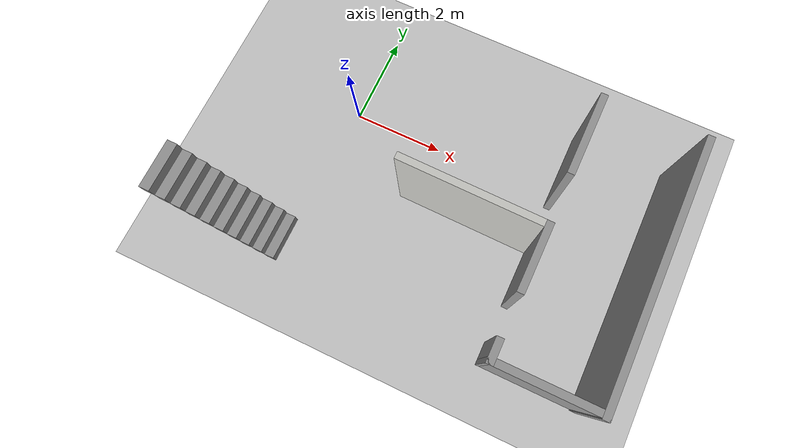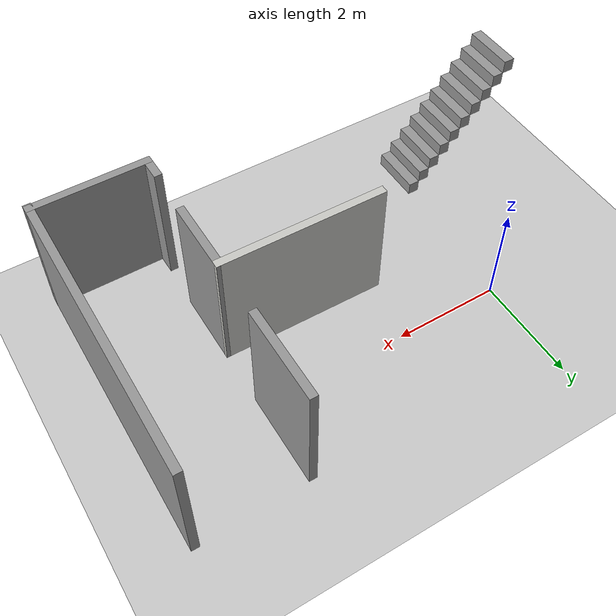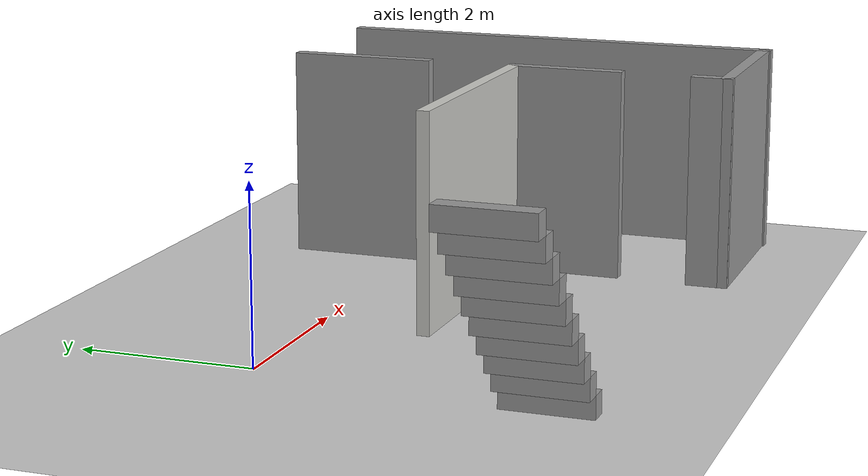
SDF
<sdf version="1.6">
 <world name="default">
  <model name="ground_plane">
   <static>1</static>
   <link name="link">
    <collision name="collision">
     <geometry><plane><normal>0 0 1</normal><size>100 100</size></plane></geometry>
     <surface><friction><ode><mu>100</mu><mu2>50</mu2></ode></friction></surface>
    </collision>
    <visual name="visual">
     <cast_shadows>0</cast_shadows>
     <geometry><plane><normal>0 0 1</normal><size>100 100</size></plane></geometry>
     <material>
      <script><uri>file://media/materials/scripts/gazebo.material</uri><name>Gazebo/Grey</name></script>
     </material>
    </visual>
   </link>
  </model>
  <model name="SLAMHome">
   <link name="Stairs_1">
    <visual name="Stairs_1_Visual_0">
     <pose>-2.48305 -2.07455 0.125 0 0 -1.5708</pose>
     <geometry><box><size>1 0.215239 0.25</size></box></geometry>
     <material>
      <script><uri>file://media/materials/scripts/gazebo.material</uri><name>Gazebo/Grey</name></script>
      <ambient>1 1 1 1</ambient>
      <diffuse>0.7 0.7 0.7 1</diffuse>
      <specular>0.01 0.01 0.01 1</specular>
      <emissive>0 0 0 1</emissive>
     </material>
    </visual>
    <visual name="Stairs_1_Visual_1">
     <pose>-2.69829 -2.07455 0.375 0 0 -1.5708</pose>
     <geometry><box><size>1 0.215239 0.25</size></box></geometry>
     <material>
      <script><uri>file://media/materials/scripts/gazebo.material</uri><name>Gazebo/Grey</name></script>
      <ambient>1 1 1 1</ambient>
      <diffuse>0.7 0.7 0.7 1</diffuse>
      <specular>0.01 0.01 0.01 1</specular>
      <emissive>0 0 0 1</emissive>
     </material>
    </visual>
    <visual name="Stairs_1_Visual_2">
     <pose>-2.91353 -2.07455 0.625 0 0 -1.5708</pose>
     <geometry><box><size>1 0.215239 0.25</size></box></geometry>
     <material>
      <script><uri>file://media/materials/scripts/gazebo.material</uri><name>Gazebo/Grey</name></script>
      <ambient>1 1 1 1</ambient>
      <diffuse>0.7 0.7 0.7 1</diffuse>
      <specular>0.01 0.01 0.01 1</specular>
      <emissive>0 0 0 1</emissive>
     </material>
    </visual>
    <visual name="Stairs_1_Visual_3">
     <pose>-3.12877 -2.07455 0.875 0 0 -1.5708</pose>
     <geometry><box><size>1 0.215239 0.25</size></box></geometry>
     <material>
      <script><uri>file://media/materials/scripts/gazebo.material</uri><name>Gazebo/Grey</name></script>
      <ambient>1 1 1 1</ambient>
      <diffuse>0.7 0.7 0.7 1</diffuse>
      <specular>0.01 0.01 0.01 1</specular>
      <emissive>0 0 0 1</emissive>
     </material>
    </visual>
    <visual name="Stairs_1_Visual_4">
     <pose>-3.34401 -2.07455 1.125 0 0 -1.5708</pose>
     <geometry><box><size>1 0.215239 0.25</size></box></geometry>
     <material>
      <script><uri>file://media/materials/scripts/gazebo.material</uri><name>Gazebo/Grey</name></script>
      <ambient>1 1 1 1</ambient>
      <diffuse>0.7 0.7 0.7 1</diffuse>
      <specular>0.01 0.01 0.01 1</specular>
      <emissive>0 0 0 1</emissive>
     </material>
    </visual>
    <visual name="Stairs_1_Visual_5">
     <pose>-3.55925 -2.07455 1.375 0 0 -1.5708</pose>
     <geometry><box><size>1 0.215239 0.25</size></box></geometry>
     <material>
      <script><uri>file://media/materials/scripts/gazebo.material</uri><name>Gazebo/Grey</name></script>
      <ambient>1 1 1 1</ambient>
      <diffuse>0.7 0.7 0.7 1</diffuse>
      <specular>0.01 0.01 0.01 1</specular>
      <emissive>0 0 0 1</emissive>
     </material>
    </visual>
    <visual name="Stairs_1_Visual_6">
     <pose>-3.77449 -2.07455 1.625 0 0 -1.5708</pose>
     <geometry><box><size>1 0.215239 0.25</size></box></geometry>
     <material>
      <script><uri>file://media/materials/scripts/gazebo.material</uri><name>Gazebo/Grey</name></script>
      <ambient>1 1 1 1</ambient>
      <diffuse>0.7 0.7 0.7 1</diffuse>
      <specular>0.01 0.01 0.01 1</specular>
      <emissive>0 0 0 1</emissive>
     </material>
    </visual>
    <visual name="Stairs_1_Visual_7">
     <pose>-3.98973 -2.07455 1.875 0 0 -1.5708</pose>
     <geometry><box><size>1 0.215239 0.25</size></box></geometry>
     <material>
      <script><uri>file://media/materials/scripts/gazebo.material</uri><name>Gazebo/Grey</name></script>
      <ambient>1 1 1 1</ambient>
      <diffuse>0.7 0.7 0.7 1</diffuse>
      <specular>0.01 0.01 0.01 1</specular>
      <emissive>0 0 0 1</emissive>
     </material>
    </visual>
    <visual name="Stairs_1_Visual_8">
     <pose>-4.20497 -2.07455 2.125 0 0 -1.5708</pose>
     <geometry><box><size>1 0.215239 0.25</size></box></geometry>
     <material>
      <script><uri>file://media/materials/scripts/gazebo.material</uri><name>Gazebo/Grey</name></script>
      <ambient>1 1 1 1</ambient>
      <diffuse>0.7 0.7 0.7 1</diffuse>
      <specular>0.01 0.01 0.01 1</specular>
      <emissive>0 0 0 1</emissive>
     </material>
    </visual>
    <visual name="Stairs_1_Visual_9">
     <pose>-4.42021 -2.07455 2.375 0 0 -1.5708</pose>
     <geometry><box><size>1 0.215239 0.25</size></box></geometry>
     <material>
      <script><uri>file://media/materials/scripts/gazebo.material</uri><name>Gazebo/Grey</name></script>
      <ambient>1 1 1 1</ambient>
      <diffuse>0.7 0.7 0.7 1</diffuse>
      <specular>0.01 0.01 0.01 1</specular>
      <emissive>0 0 0 1</emissive>
     </material>
    </visual>
    <collision name="Stairs_1_Collision_1">
     <pose>-2.69829 -2.07455 0.375 0 0 -1.5708</pose>
     <geometry><box><size>1 0.215239 0.25</size></box></geometry>
     <surface>
      <friction>
       <ode><mu>1</mu><mu2>1</mu2><fdir1>0 0 0</fdir1><slip1>0</slip1><slip2>0</slip2></ode>
       <torsional>
        <coefficient>1</coefficient>
        <patch_radius>0</patch_radius>
        <surface_radius>0</surface_radius>
        <use_patch_radius>1</use_patch_radius>
        <ode><slip>0</slip></ode>
       </torsional>
      </friction>
      <bounce><restitution_coefficient>0</restitution_coefficient><threshold>1e+06</threshold></bounce>
      <contact>
       <collide_without_contact>0</collide_without_contact>
       <collide_without_contact_bitmask>1</collide_without_contact_bitmask>
       <collide_bitmask>1</collide_bitmask>
       <ode>
        <soft_cfm>0</soft_cfm>
        <soft_erp>0.2</soft_erp>
        <kp>1e+13</kp>
        <kd>1</kd>
        <max_vel>0.01</max_vel>
        <min_depth>0</min_depth>
       </ode>
       <bullet>
        <split_impulse>1</split_impulse>
        <split_impulse_penetration_threshold>-0.01</split_impulse_penetration_threshold>
        <soft_cfm>0</soft_cfm>
        <soft_erp>0.2</soft_erp>
        <kp>1e+13</kp>
        <kd>1</kd>
       </bullet>
      </contact>
     </surface>
    </collision>
    <collision name="Stairs_1_Collision_0">
     <pose>-2.48305 -2.07455 0.125 0 0 -1.5708</pose>
     <geometry><box><size>1 0.215239 0.25</size></box></geometry>
     <surface>
      <friction>
       <ode><mu>1</mu><mu2>1</mu2><fdir1>0 0 0</fdir1><slip1>0</slip1><slip2>0</slip2></ode>
       <torsional>
        <coefficient>1</coefficient>
        <patch_radius>0</patch_radius>
        <surface_radius>0</surface_radius>
        <use_patch_radius>1</use_patch_radius>
        <ode><slip>0</slip></ode>
       </torsional>
      </friction>
      <bounce><restitution_coefficient>0</restitution_coefficient><threshold>1e+06</threshold></bounce>
      <contact>
       <collide_without_contact>0</collide_without_contact>
       <collide_without_contact_bitmask>1</collide_without_contact_bitmask>
       <collide_bitmask>1</collide_bitmask>
       <ode>
        <soft_cfm>0</soft_cfm>
        <soft_erp>0.2</soft_erp>
        <kp>1e+13</kp>
        <kd>1</kd>
        <max_vel>0.01</max_vel>
        <min_depth>0</min_depth>
       </ode>
       <bullet>
        <split_impulse>1</split_impulse>
        <split_impulse_penetration_threshold>-0.01</split_impulse_penetration_threshold>
        <soft_cfm>0</soft_cfm>
        <soft_erp>0.2</soft_erp>
        <kp>1e+13</kp>
        <kd>1</kd>
       </bullet>
      </contact>
     </surface>
    </collision>
    <collision name="Stairs_1_Collision_2">
     <pose>-2.91353 -2.07455 0.625 0 0 -1.5708</pose>
     <geometry><box><size>1 0.215239 0.25</size></box></geometry>
     <surface>
      <friction>
       <ode><mu>1</mu><mu2>1</mu2><fdir1>0 0 0</fdir1><slip1>0</slip1><slip2>0</slip2></ode>
       <torsional>
        <coefficient>1</coefficient>
        <patch_radius>0</patch_radius>
        <surface_radius>0</surface_radius>
        <use_patch_radius>1</use_patch_radius>
        <ode><slip>0</slip></ode>
       </torsional>
      </friction>
      <bounce><restitution_coefficient>0</restitution_coefficient><threshold>1e+06</threshold></bounce>
      <contact>
       <collide_without_contact>0</collide_without_contact>
       <collide_without_contact_bitmask>1</collide_without_contact_bitmask>
       <collide_bitmask>1</collide_bitmask>
       <ode>
        <soft_cfm>0</soft_cfm>
        <soft_erp>0.2</soft_erp>
        <kp>1e+13</kp>
        <kd>1</kd>
        <max_vel>0.01</max_vel>
        <min_depth>0</min_depth>
       </ode>
       <bullet>
        <split_impulse>1</split_impulse>
        <split_impulse_penetration_threshold>-0.01</split_impulse_penetration_threshold>
        <soft_cfm>0</soft_cfm>
        <soft_erp>0.2</soft_erp>
        <kp>1e+13</kp>
        <kd>1</kd>
       </bullet>
      </contact>
     </surface>
    </collision>
    <collision name="Stairs_1_Collision_3">
     <pose>-3.12877 -2.07455 0.875 0 0 -1.5708</pose>
     <geometry><box><size>1 0.215239 0.25</size></box></geometry>
     <surface>
      <friction>
       <ode><mu>1</mu><mu2>1</mu2><fdir1>0 0 0</fdir1><slip1>0</slip1><slip2>0</slip2></ode>
       <torsional>
        <coefficient>1</coefficient>
        <patch_radius>0</patch_radius>
        <surface_radius>0</surface_radius>
        <use_patch_radius>1</use_patch_radius>
        <ode><slip>0</slip></ode>
       </torsional>
      </friction>
      <bounce><restitution_coefficient>0</restitution_coefficient><threshold>1e+06</threshold></bounce>
      <contact>
       <collide_without_contact>0</collide_without_contact>
       <collide_without_contact_bitmask>1</collide_without_contact_bitmask>
       <collide_bitmask>1</collide_bitmask>
       <ode>
        <soft_cfm>0</soft_cfm>
        <soft_erp>0.2</soft_erp>
        <kp>1e+13</kp>
        <kd>1</kd>
        <max_vel>0.01</max_vel>
        <min_depth>0</min_depth>
       </ode>
       <bullet>
        <split_impulse>1</split_impulse>
        <split_impulse_penetration_threshold>-0.01</split_impulse_penetration_threshold>
        <soft_cfm>0</soft_cfm>
        <soft_erp>0.2</soft_erp>
        <kp>1e+13</kp>
        <kd>1</kd>
       </bullet>
      </contact>
     </surface>
    </collision>
    <collision name="Stairs_1_Collision_4">
     <pose>-3.34401 -2.07455 1.125 0 0 -1.5708</pose>
     <geometry><box><size>1 0.215239 0.25</size></box></geometry>
     <surface>
      <friction>
       <ode><mu>1</mu><mu2>1</mu2><fdir1>0 0 0</fdir1><slip1>0</slip1><slip2>0</slip2></ode>
       <torsional>
        <coefficient>1</coefficient>
        <patch_radius>0</patch_radius>
        <surface_radius>0</surface_radius>
        <use_patch_radius>1</use_patch_radius>
        <ode><slip>0</slip></ode>
       </torsional>
      </friction>
      <bounce><restitution_coefficient>0</restitution_coefficient><threshold>1e+06</threshold></bounce>
      <contact>
       <collide_without_contact>0</collide_without_contact>
       <collide_without_contact_bitmask>1</collide_without_contact_bitmask>
       <collide_bitmask>1</collide_bitmask>
       <ode>
        <soft_cfm>0</soft_cfm>
        <soft_erp>0.2</soft_erp>
        <kp>1e+13</kp>
        <kd>1</kd>
        <max_vel>0.01</max_vel>
        <min_depth>0</min_depth>
       </ode>
       <bullet>
        <split_impulse>1</split_impulse>
        <split_impulse_penetration_threshold>-0.01</split_impulse_penetration_threshold>
        <soft_cfm>0</soft_cfm>
        <soft_erp>0.2</soft_erp>
        <kp>1e+13</kp>
        <kd>1</kd>
       </bullet>
      </contact>
     </surface>
    </collision>
    <collision name="Stairs_1_Collision_7">
     <pose>-3.98973 -2.07455 1.875 0 0 -1.5708</pose>
     <geometry><box><size>1 0.215239 0.25</size></box></geometry>
     <surface>
      <friction>
       <ode><mu>1</mu><mu2>1</mu2><fdir1>0 0 0</fdir1><slip1>0</slip1><slip2>0</slip2></ode>
       <torsional>
        <coefficient>1</coefficient>
        <patch_radius>0</patch_radius>
        <surface_radius>0</surface_radius>
        <use_patch_radius>1</use_patch_radius>
        <ode><slip>0</slip></ode>
       </torsional>
      </friction>
      <bounce><restitution_coefficient>0</restitution_coefficient><threshold>1e+06</threshold></bounce>
      <contact>
       <collide_without_contact>0</collide_without_contact>
       <collide_without_contact_bitmask>1</collide_without_contact_bitmask>
       <collide_bitmask>1</collide_bitmask>
       <ode>
        <soft_cfm>0</soft_cfm>
        <soft_erp>0.2</soft_erp>
        <kp>1e+13</kp>
        <kd>1</kd>
        <max_vel>0.01</max_vel>
        <min_depth>0</min_depth>
       </ode>
       <bullet>
        <split_impulse>1</split_impulse>
        <split_impulse_penetration_threshold>-0.01</split_impulse_penetration_threshold>
        <soft_cfm>0</soft_cfm>
        <soft_erp>0.2</soft_erp>
        <kp>1e+13</kp>
        <kd>1</kd>
       </bullet>
      </contact>
     </surface>
    </collision>
    <collision name="Stairs_1_Collision_5">
     <pose>-3.55925 -2.07455 1.375 0 0 -1.5708</pose>
     <geometry><box><size>1 0.215239 0.25</size></box></geometry>
     <surface>
      <friction>
       <ode><mu>1</mu><mu2>1</mu2><fdir1>0 0 0</fdir1><slip1>0</slip1><slip2>0</slip2></ode>
       <torsional>
        <coefficient>1</coefficient>
        <patch_radius>0</patch_radius>
        <surface_radius>0</surface_radius>
        <use_patch_radius>1</use_patch_radius>
        <ode><slip>0</slip></ode>
       </torsional>
      </friction>
      <bounce><restitution_coefficient>0</restitution_coefficient><threshold>1e+06</threshold></bounce>
      <contact>
       <collide_without_contact>0</collide_without_contact>
       <collide_without_contact_bitmask>1</collide_without_contact_bitmask>
       <collide_bitmask>1</collide_bitmask>
       <ode>
        <soft_cfm>0</soft_cfm>
        <soft_erp>0.2</soft_erp>
        <kp>1e+13</kp>
        <kd>1</kd>
        <max_vel>0.01</max_vel>
        <min_depth>0</min_depth>
       </ode>
       <bullet>
        <split_impulse>1</split_impulse>
        <split_impulse_penetration_threshold>-0.01</split_impulse_penetration_threshold>
        <soft_cfm>0</soft_cfm>
        <soft_erp>0.2</soft_erp>
        <kp>1e+13</kp>
        <kd>1</kd>
       </bullet>
      </contact>
     </surface>
    </collision>
    <collision name="Stairs_1_Collision_6">
     <pose>-3.77449 -2.07455 1.625 0 0 -1.5708</pose>
     <geometry><box><size>1 0.215239 0.25</size></box></geometry>
     <surface>
      <friction>
       <ode><mu>1</mu><mu2>1</mu2><fdir1>0 0 0</fdir1><slip1>0</slip1><slip2>0</slip2></ode>
       <torsional>
        <coefficient>1</coefficient>
        <patch_radius>0</patch_radius>
        <surface_radius>0</surface_radius>
        <use_patch_radius>1</use_patch_radius>
        <ode><slip>0</slip></ode>
       </torsional>
      </friction>
      <bounce><restitution_coefficient>0</restitution_coefficient><threshold>1e+06</threshold></bounce>
      <contact>
       <collide_without_contact>0</collide_without_contact>
       <collide_without_contact_bitmask>1</collide_without_contact_bitmask>
       <collide_bitmask>1</collide_bitmask>
       <ode>
        <soft_cfm>0</soft_cfm>
        <soft_erp>0.2</soft_erp>
        <kp>1e+13</kp>
        <kd>1</kd>
        <max_vel>0.01</max_vel>
        <min_depth>0</min_depth>
       </ode>
       <bullet>
        <split_impulse>1</split_impulse>
        <split_impulse_penetration_threshold>-0.01</split_impulse_penetration_threshold>
        <soft_cfm>0</soft_cfm>
        <soft_erp>0.2</soft_erp>
        <kp>1e+13</kp>
        <kd>1</kd>
       </bullet>
      </contact>
     </surface>
    </collision>
    <collision name="Stairs_1_Collision_8">
     <pose>-4.20497 -2.07455 2.125 0 0 -1.5708</pose>
     <geometry><box><size>1 0.215239 0.25</size></box></geometry>
     <surface>
      <friction>
       <ode><mu>1</mu><mu2>1</mu2><fdir1>0 0 0</fdir1><slip1>0</slip1><slip2>0</slip2></ode>
       <torsional>
        <coefficient>1</coefficient>
        <patch_radius>0</patch_radius>
        <surface_radius>0</surface_radius>
        <use_patch_radius>1</use_patch_radius>
        <ode><slip>0</slip></ode>
       </torsional>
      </friction>
      <bounce><restitution_coefficient>0</restitution_coefficient><threshold>1e+06</threshold></bounce>
      <contact>
       <collide_without_contact>0</collide_without_contact>
       <collide_without_contact_bitmask>1</collide_without_contact_bitmask>
       <collide_bitmask>1</collide_bitmask>
       <ode>
        <soft_cfm>0</soft_cfm>
        <soft_erp>0.2</soft_erp>
        <kp>1e+13</kp>
        <kd>1</kd>
        <max_vel>0.01</max_vel>
        <min_depth>0</min_depth>
       </ode>
       <bullet>
        <split_impulse>1</split_impulse>
        <split_impulse_penetration_threshold>-0.01</split_impulse_penetration_threshold>
        <soft_cfm>0</soft_cfm>
        <soft_erp>0.2</soft_erp>
        <kp>1e+13</kp>
        <kd>1</kd>
       </bullet>
      </contact>
     </surface>
    </collision>
    <collision name="Stairs_1_Collision_9">
     <pose>-4.42021 -2.07455 2.375 0 0 -1.5708</pose>
     <geometry><box><size>1 0.215239 0.25</size></box></geometry>
     <surface>
      <friction>
       <ode><mu>1</mu><mu2>1</mu2><fdir1>0 0 0</fdir1><slip1>0</slip1><slip2>0</slip2></ode>
       <torsional>
        <coefficient>1</coefficient>
        <patch_radius>0</patch_radius>
        <surface_radius>0</surface_radius>
        <use_patch_radius>1</use_patch_radius>
        <ode><slip>0</slip></ode>
       </torsional>
      </friction>
      <bounce><restitution_coefficient>0</restitution_coefficient><threshold>1e+06</threshold></bounce>
      <contact>
       <collide_without_contact>0</collide_without_contact>
       <collide_without_contact_bitmask>1</collide_without_contact_bitmask>
       <collide_bitmask>1</collide_bitmask>
       <ode>
        <soft_cfm>0</soft_cfm>
        <soft_erp>0.2</soft_erp>
        <kp>1e+13</kp>
        <kd>1</kd>
        <max_vel>0.01</max_vel>
        <min_depth>0</min_depth>
       </ode>
       <bullet>
        <split_impulse>1</split_impulse>
        <split_impulse_penetration_threshold>-0.01</split_impulse_penetration_threshold>
        <soft_cfm>0</soft_cfm>
        <soft_erp>0.2</soft_erp>
        <kp>1e+13</kp>
        <kd>1</kd>
       </bullet>
      </contact>
     </surface>
    </collision>
   </link>
   <link name="Wall_18">
    <pose>2.51279 -0.716048 0 0 0 -1.5708</pose>
    <visual name="Wall_18_Visual">
     <pose>0 0 1.25 0 -0 0</pose>
     <geometry><box><size>1.42 0.15 2.5</size></box></geometry>
     <material>
      <script><uri>file://media/materials/scripts/gazebo.material</uri><name>Gazebo/Grey</name></script>
      <ambient>1 1 1 1</ambient>
      <diffuse>0.7 0.7 0.7 1</diffuse>
      <specular>0.01 0.01 0.01 1</specular>
      <emissive>0 0 0 1</emissive>
     </material>
    </visual>
    <collision name="Wall_18_Collision">
     <pose>0 0 1.25 0 -0 0</pose>
     <geometry><box><size>1.42 0.15 2.5</size></box></geometry>
     <surface>
      <friction>
       <ode><mu>1</mu><mu2>1</mu2><fdir1>0 0 0</fdir1><slip1>0</slip1><slip2>0</slip2></ode>
       <torsional>
        <coefficient>1</coefficient>
        <patch_radius>0</patch_radius>
        <surface_radius>0</surface_radius>
        <use_patch_radius>1</use_patch_radius>
        <ode><slip>0</slip></ode>
       </torsional>
      </friction>
      <bounce><restitution_coefficient>0</restitution_coefficient><threshold>1e+06</threshold></bounce>
      <contact>
       <collide_without_contact>0</collide_without_contact>
       <collide_without_contact_bitmask>1</collide_without_contact_bitmask>
       <collide_bitmask>1</collide_bitmask>
       <ode>
        <soft_cfm>0</soft_cfm>
        <soft_erp>0.2</soft_erp>
        <kp>1e+13</kp>
        <kd>1</kd>
        <max_vel>0.01</max_vel>
        <min_depth>0</min_depth>
       </ode>
       <bullet>
        <split_impulse>1</split_impulse>
        <split_impulse_penetration_threshold>-0.01</split_impulse_penetration_threshold>
        <soft_cfm>0</soft_cfm>
        <soft_erp>0.2</soft_erp>
        <kp>1e+13</kp>
        <kd>1</kd>
       </bullet>
      </contact>
     </surface>
    </collision>
   </link>
   <link name="Wall_21">
    <pose>4.60664 0 0 0 0 -1.5708</pose>
    <visual name="Wall_21_Visual">
     <pose>0 0 1.25 0 -0 0</pose>
     <geometry><box><size>5.54023 0.15 2.5</size></box></geometry>
     <material>
      <script><uri>file://media/materials/scripts/gazebo.material</uri><name>Gazebo/Grey</name></script>
      <ambient>1 1 1 1</ambient>
      <diffuse>0.7 0.7 0.7 1</diffuse>
      <specular>0.01 0.01 0.01 1</specular>
      <emissive>0 0 0 1</emissive>
     </material>
    </visual>
    <collision name="Wall_21_Collision">
     <pose>0 0 1.25 0 -0 0</pose>
     <geometry><box><size>5.54023 0.15 2.5</size></box></geometry>
     <surface>
      <friction>
       <ode><mu>1</mu><mu2>1</mu2><fdir1>0 0 0</fdir1><slip1>0</slip1><slip2>0</slip2></ode>
       <torsional>
        <coefficient>1</coefficient>
        <patch_radius>0</patch_radius>
        <surface_radius>0</surface_radius>
        <use_patch_radius>1</use_patch_radius>
        <ode><slip>0</slip></ode>
       </torsional>
      </friction>
      <bounce><restitution_coefficient>0</restitution_coefficient><threshold>1e+06</threshold></bounce>
      <contact>
       <collide_without_contact>0</collide_without_contact>
       <collide_without_contact_bitmask>1</collide_without_contact_bitmask>
       <collide_bitmask>1</collide_bitmask>
       <ode>
        <soft_cfm>0</soft_cfm>
        <soft_erp>0.2</soft_erp>
        <kp>1e+13</kp>
        <kd>1</kd>
        <max_vel>0.01</max_vel>
        <min_depth>0</min_depth>
       </ode>
       <bullet>
        <split_impulse>1</split_impulse>
        <split_impulse_penetration_threshold>-0.01</split_impulse_penetration_threshold>
        <soft_cfm>0</soft_cfm>
        <soft_erp>0.2</soft_erp>
        <kp>1e+13</kp>
        <kd>1</kd>
       </bullet>
      </contact>
     </surface>
    </collision>
   </link>
   <link name="Wall_22">
    <pose>3.55472 -2.67814 0 0 0 -3.13861</pose>
    <visual name="Wall_22_Visual">
     <pose>0 0 1.25 0 -0 0</pose>
     <geometry><box><size>2.25455 0.15 2.5</size></box></geometry>
     <material>
      <script><uri>file://media/materials/scripts/gazebo.material</uri><name>Gazebo/Grey</name></script>
      <ambient>1 1 1 1</ambient>
      <diffuse>0.7 0.7 0.7 1</diffuse>
      <specular>0.01 0.01 0.01 1</specular>
      <emissive>0 0 0 1</emissive>
     </material>
    </visual>
    <collision name="Wall_22_Collision">
     <pose>0 0 1.25 0 -0 0</pose>
     <geometry><box><size>2.25455 0.15 2.5</size></box></geometry>
     <surface>
      <friction>
       <ode><mu>1</mu><mu2>1</mu2><fdir1>0 0 0</fdir1><slip1>0</slip1><slip2>0</slip2></ode>
       <torsional>
        <coefficient>1</coefficient>
        <patch_radius>0</patch_radius>
        <surface_radius>0</surface_radius>
        <use_patch_radius>1</use_patch_radius>
        <ode><slip>0</slip></ode>
       </torsional>
      </friction>
      <bounce><restitution_coefficient>0</restitution_coefficient><threshold>1e+06</threshold></bounce>
      <contact>
       <collide_without_contact>0</collide_without_contact>
       <collide_without_contact_bitmask>1</collide_without_contact_bitmask>
       <collide_bitmask>1</collide_bitmask>
       <ode>
        <soft_cfm>0</soft_cfm>
        <soft_erp>0.2</soft_erp>
        <kp>1e+13</kp>
        <kd>1</kd>
        <max_vel>0.01</max_vel>
        <min_depth>0</min_depth>
       </ode>
       <bullet>
        <split_impulse>1</split_impulse>
        <split_impulse_penetration_threshold>-0.01</split_impulse_penetration_threshold>
        <soft_cfm>0</soft_cfm>
        <soft_erp>0.2</soft_erp>
        <kp>1e+13</kp>
        <kd>1</kd>
       </bullet>
      </contact>
     </surface>
    </collision>
   </link>
   <link name="Wall_33">
    <pose>2.50091 -2.50571 0 0 0 -1.56008</pose>
    <visual name="Wall_33_Visual">
     <pose>0 0 1.25 0 -0 0</pose>
     <geometry><box><size>0.501156 0.15 2.5</size></box></geometry>
     <material>
      <script><uri>file://media/materials/scripts/gazebo.material</uri><name>Gazebo/Grey</name></script>
      <ambient>1 1 1 1</ambient>
      <diffuse>0.7 0.7 0.7 1</diffuse>
      <specular>0.01 0.01 0.01 1</specular>
      <emissive>0 0 0 1</emissive>
     </material>
    </visual>
    <collision name="Wall_33_Collision">
     <pose>0 0 1.25 0 -0 0</pose>
     <geometry><box><size>0.501156 0.15 2.5</size></box></geometry>
     <surface>
      <friction>
       <ode><mu>1</mu><mu2>1</mu2><fdir1>0 0 0</fdir1><slip1>0</slip1><slip2>0</slip2></ode>
       <torsional>
        <coefficient>1</coefficient>
        <patch_radius>0</patch_radius>
        <surface_radius>0</surface_radius>
        <use_patch_radius>1</use_patch_radius>
        <ode><slip>0</slip></ode>
       </torsional>
      </friction>
      <bounce><restitution_coefficient>0</restitution_coefficient><threshold>1e+06</threshold></bounce>
      <contact>
       <collide_without_contact>0</collide_without_contact>
       <collide_without_contact_bitmask>1</collide_without_contact_bitmask>
       <collide_bitmask>1</collide_bitmask>
       <ode>
        <soft_cfm>0</soft_cfm>
        <soft_erp>0.2</soft_erp>
        <kp>1e+13</kp>
        <kd>1</kd>
        <max_vel>0.01</max_vel>
        <min_depth>0</min_depth>
       </ode>
       <bullet>
        <split_impulse>1</split_impulse>
        <split_impulse_penetration_threshold>-0.01</split_impulse_penetration_threshold>
        <soft_cfm>0</soft_cfm>
        <soft_erp>0.2</soft_erp>
        <kp>1e+13</kp>
        <kd>1</kd>
       </bullet>
      </contact>
     </surface>
    </collision>
   </link>
   <link name="Wall_35">
    <pose>2.50279 1.84895 0 0 0 -1.5708</pose>
    <visual name="Wall_35_Visual">
     <pose>0 0 1.25 0 -0 0</pose>
     <geometry><box><size>1.75 0.15 2.5</size></box></geometry>
     <material>
      <script><uri>file://media/materials/scripts/gazebo.material</uri><name>Gazebo/Grey</name></script>
      <ambient>1 1 1 1</ambient>
      <diffuse>0.7 0.7 0.7 1</diffuse>
      <specular>0.01 0.01 0.01 1</specular>
      <emissive>0 0 0 1</emissive>
     </material>
    </visual>
    <collision name="Wall_35_Collision">
     <pose>0 0 1.25 0 -0 0</pose>
     <geometry><box><size>1.75 0.15 2.5</size></box></geometry>
     <surface>
      <friction>
       <ode><mu>1</mu><mu2>1</mu2><fdir1>0 0 0</fdir1><slip1>0</slip1><slip2>0</slip2></ode>
       <torsional>
        <coefficient>1</coefficient>
        <patch_radius>0</patch_radius>
        <surface_radius>0</surface_radius>
        <use_patch_radius>1</use_patch_radius>
        <ode><slip>0</slip></ode>
       </torsional>
      </friction>
      <bounce><restitution_coefficient>0</restitution_coefficient><threshold>1e+06</threshold></bounce>
      <contact>
       <collide_without_contact>0</collide_without_contact>
       <collide_without_contact_bitmask>1</collide_without_contact_bitmask>
       <collide_bitmask>1</collide_bitmask>
       <ode>
        <soft_cfm>0</soft_cfm>
        <soft_erp>0.2</soft_erp>
        <kp>1e+13</kp>
        <kd>1</kd>
        <max_vel>0.01</max_vel>
        <min_depth>0</min_depth>
       </ode>
       <bullet>
        <split_impulse>1</split_impulse>
        <split_impulse_penetration_threshold>-0.01</split_impulse_penetration_threshold>
        <soft_cfm>0</soft_cfm>
        <soft_erp>0.2</soft_erp>
        <kp>1e+13</kp>
        <kd>1</kd>
       </bullet>
      </contact>
     </surface>
    </collision>
   </link>
   <link name="Wall_6">
    <pose>1.01279 -0.066048 0 0 -0 3.13159</pose>
    <visual name="Wall_6_Visual">
     <pose>0 0 1.25 0 -0 0</pose>
     <geometry><box><size>3.15015 0.15 2.5</size></box></geometry>
     <material>
      <script><uri>file://media/materials/scripts/gazebo.material</uri><name>Gazebo/CeilingTiled</name></script>
      <ambient>0.921569 0.807843 0.615686 1</ambient>
      <diffuse>1 1 1 1</diffuse>
      <specular>0 0 0 1</specular>
      <emissive>0 0 0 1</emissive>
     </material>
    </visual>
    <collision name="Wall_6_Collision">
     <pose>0 0 1.25 0 -0 0</pose>
     <geometry><box><size>3.15015 0.15 2.5</size></box></geometry>
     <surface>
      <friction>
       <ode><mu>1</mu><mu2>1</mu2><fdir1>0 0 0</fdir1><slip1>0</slip1><slip2>0</slip2></ode>
       <torsional>
        <coefficient>1</coefficient>
        <patch_radius>0</patch_radius>
        <surface_radius>0</surface_radius>
        <use_patch_radius>1</use_patch_radius>
        <ode><slip>0</slip></ode>
       </torsional>
      </friction>
      <bounce><restitution_coefficient>0</restitution_coefficient><threshold>1e+06</threshold></bounce>
      <contact>
       <collide_without_contact>0</collide_without_contact>
       <collide_without_contact_bitmask>1</collide_without_contact_bitmask>
       <collide_bitmask>1</collide_bitmask>
       <ode>
        <soft_cfm>0</soft_cfm>
        <soft_erp>0.2</soft_erp>
        <kp>1e+13</kp>
        <kd>1</kd>
        <max_vel>0.01</max_vel>
        <min_depth>0</min_depth>
       </ode>
       <bullet>
        <split_impulse>1</split_impulse>
        <split_impulse_penetration_threshold>-0.01</split_impulse_penetration_threshold>
        <soft_cfm>0</soft_cfm>
        <soft_erp>0.2</soft_erp>
        <kp>1e+13</kp>
        <kd>1</kd>
       </bullet>
      </contact>
     </surface>
    </collision>
   </link>
   <static>1</static>
   <pose>2.24517 -1.20416 0 0 -0 0</pose>
  </model>
 </world>
</sdf>
